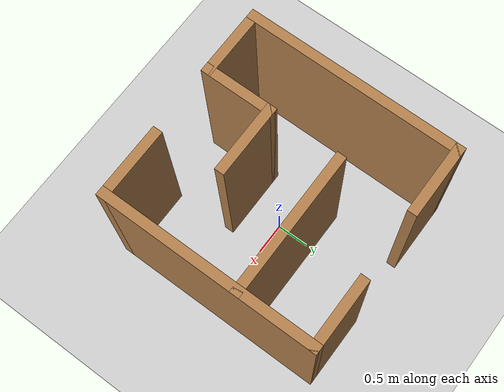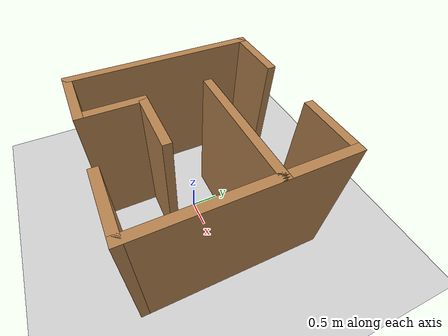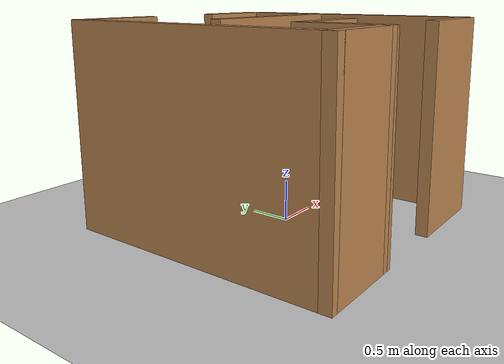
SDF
<?xml version="1.0"?>
<sdf version="1.6">
  <world name="default">

    <include>
      <uri>model://ground_plane</uri>
    </include>

    <include>
      <uri>model://sun</uri>
    </include>

    <scene>
      <shadows>false</shadows>
    </scene>

    <gui fullscreen='0'>
      <camera name='user_camera'>
        <pose frame=''>0.319654 -0.235002 9.29441 0 1.5138 0.009599</pose>
        <view_controller>orbit</view_controller>
        <projection_type>perspective</projection_type>
      </camera>
    </gui>

    <physics type="ode">
      <real_time_update_rate>1000.0</real_time_update_rate>
      <max_step_size>0.001</max_step_size>
      <real_time_factor>1</real_time_factor>
      <ode>
        <solver>
          <type>quick</type>
          <iters>150</iters>
          <precon_iters>0</precon_iters>
          <sor>1.400000</sor>
          <use_dynamic_moi_rescaling>1</use_dynamic_moi_rescaling>
        </solver>
        <constraints>
          <cfm>0.00001</cfm>
          <erp>0.2</erp>
          <contact_max_correcting_vel>2000.000000</contact_max_correcting_vel>
          <contact_surface_layer>0.01000</contact_surface_layer>
        </constraints>
      </ode>
    </physics>

    <model name="maze3x3">
      <static>1</static>
      <include>
        <uri>model://maze3x3</uri>
      </include>
    </model>

  </world>
</sdf>

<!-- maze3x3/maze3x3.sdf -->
<sdf version='1.7'>
  <model name='maze3x3'>
    <pose>0.005 0.06 0 0 -0 0</pose>
    <link name='Wall_16'>
      <collision name='Wall_16_Collision'>
        <geometry>
          <box>
            <size>1.15 0.15 2.5</size>
          </box>
        </geometry>
        <pose>0 0 1.25 0 -0 0</pose>
      </collision>
      <visual name='Wall_16_Visual'>
        <pose>0 0 1.25 0 -0 0</pose>
        <geometry>
          <box>
            <size>1.15 0.15 2.5</size>
          </box>
        </geometry>
        <material>
          <script>
            <uri>file://media/materials/scripts/gazebo.material</uri>
            <name>Gazebo/Wood</name>
          </script>
          <ambient>1 1 1 1</ambient>
        </material>
        <meta>
          <layer>0</layer>
        </meta>
      </visual>
      <pose>-1.085 -1.65 0 0 -0 0</pose>
    </link>
    <link name='Wall_18'>
      <collision name='Wall_18_Collision'>
        <geometry>
          <box>
            <size>3.45 0.15 2.5</size>
          </box>
        </geometry>
        <pose>0 0 1.25 0 -0 0</pose>
      </collision>
      <visual name='Wall_18_Visual'>
        <pose>0 0 1.25 0 -0 0</pose>
        <geometry>
          <box>
            <size>3.45 0.15 2.5</size>
          </box>
        </geometry>
        <material>
          <script>
            <uri>file://media/materials/scripts/gazebo.material</uri>
            <name>Gazebo/Wood</name>
          </script>
          <ambient>1 1 1 1</ambient>
        </material>
        <meta>
          <layer>0</layer>
        </meta>
      </visual>
      <pose>-1.585 0 0 0 -0 1.5708</pose>
    </link>
    <link name='Wall_20'>
      <collision name='Wall_20_Collision'>
        <geometry>
          <box>
            <size>1.15 0.15 2.5</size>
          </box>
        </geometry>
        <pose>0 0 1.25 0 -0 0</pose>
      </collision>
      <visual name='Wall_20_Visual'>
        <pose>0 0 1.25 0 -0 0</pose>
        <geometry>
          <box>
            <size>1.15 0.15 2.5</size>
          </box>
        </geometry>
        <material>
          <script>
            <uri>file://media/materials/scripts/gazebo.material</uri>
            <name>Gazebo/Wood</name>
          </script>
          <ambient>1 1 1 1</ambient>
        </material>
        <meta>
          <layer>0</layer>
        </meta>
      </visual>
      <pose>-1.085 1.65 0 0 -0 0</pose>
    </link>
    <link name='Wall_22'>
      <collision name='Wall_22_Collision'>
        <geometry>
          <box>
            <size>1.15 0.15 2.5</size>
          </box>
        </geometry>
        <pose>0 0 1.25 0 -0 0</pose>
      </collision>
      <visual name='Wall_22_Visual'>
        <pose>0 0 1.25 0 -0 0</pose>
        <geometry>
          <box>
            <size>1.15 0.15 2.5</size>
          </box>
        </geometry>
        <material>
          <script>
            <uri>file://media/materials/scripts/gazebo.material</uri>
            <name>Gazebo/Wood</name>
          </script>
          <ambient>1 1 1 1</ambient>
        </material>
        <meta>
          <layer>0</layer>
        </meta>
      </visual>
      <pose>-0.585 -1.15 0 0 -0 1.5708</pose>
    </link>
    <link name='Wall_23'>
      <collision name='Wall_23_Collision'>
        <geometry>
          <box>
            <size>1.15 0.15 2.5</size>
          </box>
        </geometry>
        <pose>0 0 1.25 0 -0 0</pose>
      </collision>
      <visual name='Wall_23_Visual'>
        <pose>0 0 1.25 0 -0 0</pose>
        <geometry>
          <box>
            <size>1.15 0.15 2.5</size>
          </box>
        </geometry>
        <material>
          <script>
            <uri>file://media/materials/scripts/gazebo.material</uri>
            <name>Gazebo/Wood</name>
          </script>
          <ambient>1 1 1 1</ambient>
        </material>
        <meta>
          <layer>0</layer>
        </meta>
      </visual>
      <pose>-0.085 -0.65 0 0 -0 0</pose>
    </link>
    <link name='Wall_25'>
      <collision name='Wall_25_Collision'>
        <geometry>
          <box>
            <size>2.3 0.15 2.5</size>
          </box>
        </geometry>
        <pose>0 0 1.25 0 -0 0</pose>
      </collision>
      <visual name='Wall_25_Visual'>
        <pose>0 0 1.25 0 -0 0</pose>
        <geometry>
          <box>
            <size>2.3 0.15 2.5</size>
          </box>
        </geometry>
        <material>
          <script>
            <uri>file://media/materials/scripts/gazebo.material</uri>
            <name>Gazebo/Wood</name>
          </script>
          <ambient>1 1 1 1</ambient>
        </material>
        <meta>
          <layer>0</layer>
        </meta>
      </visual>
      <pose>0.51 0.48 0 0 -0 0</pose>
    </link>
    <link name='Wall_27'>
      <collision name='Wall_27_Collision'>
        <geometry>
          <box>
            <size>1.15 0.15 2.5</size>
          </box>
        </geometry>
        <pose>0 0 1.25 0 -0 0</pose>
      </collision>
      <visual name='Wall_27_Visual'>
        <pose>0 0 1.25 0 -0 0</pose>
        <geometry>
          <box>
            <size>1.15 0.15 2.5</size>
          </box>
        </geometry>
        <material>
          <script>
            <uri>file://media/materials/scripts/gazebo.material</uri>
            <name>Gazebo/Wood</name>
          </script>
          <ambient>1 1 1 1</ambient>
        </material>
        <meta>
          <layer>0</layer>
        </meta>
      </visual>
      <pose>1.085 1.65 0 0 -0 0</pose>
    </link>
    <link name='Wall_28'>
      <collision name='Wall_28_Collision'>
        <geometry>
          <box>
            <size>3.45 0.15 2.5</size>
          </box>
        </geometry>
        <pose>0 0 1.25 0 -0 0</pose>
      </collision>
      <visual name='Wall_28_Visual'>
        <pose>0 0 1.25 0 -0 0</pose>
        <geometry>
          <box>
            <size>3.45 0.15 2.5</size>
          </box>
        </geometry>
        <material>
          <script>
            <uri>file://media/materials/scripts/gazebo.material</uri>
            <name>Gazebo/Wood</name>
          </script>
          <ambient>1 1 1 1</ambient>
        </material>
        <meta>
          <layer>0</layer>
        </meta>
      </visual>
      <pose>1.585 0 0 0 -0 -1.5708</pose>
    </link>
    <link name='Wall_29'>
      <collision name='Wall_29_Collision'>
        <geometry>
          <box>
            <size>1.17 0.15 2.5</size>
          </box>
        </geometry>
        <pose>0 0 1.25 0 -0 0</pose>
      </collision>
      <visual name='Wall_29_Visual'>
        <pose>0 0 1.25 0 -0 0</pose>
        <geometry>
          <box>
            <size>1.17 0.15 2.5</size>
          </box>
        </geometry>
        <material>
          <script>
            <uri>file://media/materials/scripts/gazebo.material</uri>
            <name>Gazebo/Wood</name>
          </script>
          <ambient>1 1 1 1</ambient>
        </material>
        <meta>
          <layer>0</layer>
        </meta>
      </visual>
      <pose>1.075 -1.65 0 0 -0 3.14159</pose>
    </link>
    <static>1</static>
  </model>
</sdf>
